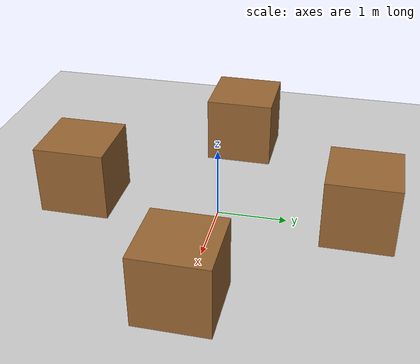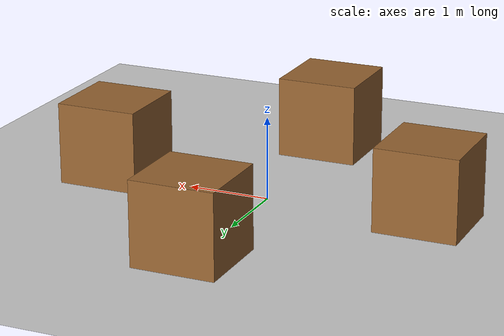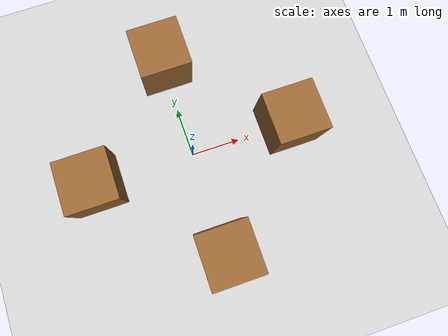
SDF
<?xml version="1.0" ?>
<sdf version="1.6">
  <world name="n10p_simple">

    <!-- 地面 -->
    <include>
      <uri>model://ground_plane</uri>
    </include>

    <!-- 光源 -->
    <include>
      <uri>model://sun</uri>
    </include>

    <scene>
      <shadows>false</shadows>
    </scene>

    <gui fullscreen='0'>
      <camera name='user_camera'>
        <pose frame=''>0 -2 5 0 0.78 0</pose>
        <view_controller>orbit</view_controller>
        <projection_type>perspective</projection_type>
      </camera>
    </gui>

    <physics type="ode">
      <real_time_update_rate>1000.0</real_time_update_rate>
      <max_step_size>0.001</max_step_size>
      <real_time_factor>1</real_time_factor>
      <ode>
        <solver>
          <type>quick</type>
          <iters>150</iters>
          <precon_iters>0</precon_iters>
          <sor>1.400000</sor>
          <use_dynamic_moi_rescaling>1</use_dynamic_moi_rescaling>
        </solver>
        <constraints>
          <cfm>0.00001</cfm>
          <erp>0.2</erp>
          <contact_max_correcting_vel>2000.000000</contact_max_correcting_vel>
          <contact_surface_layer>0.01000</contact_surface_layer>
        </constraints>
      </ode>
    </physics>

    <!-- 障碍物: 4 个盒子, 简单迷宫 -->
    <model name="obstacle_1">
      <static>true</static>
      <pose>2 0 0.5 0 0 0</pose>
      <link name="link">
        <collision name="collision">
          <geometry><box><size>1 1 1</size></box></geometry>
        </collision>
        <visual name="visual">
          <geometry><box><size>1 1 1</size></box></geometry>
          <material>
            <ambient>0.6 0.4 0.2 1</ambient>
            <diffuse>0.6 0.4 0.2 1</diffuse>
          </material>
        </visual>
      </link>
    </model>

    <model name="obstacle_2">
      <static>true</static>
      <pose>-2 0 0.5 0 0 0</pose>
      <link name="link">
        <collision name="collision">
          <geometry><box><size>1 1 1</size></box></geometry>
        </collision>
        <visual name="visual">
          <geometry><box><size>1 1 1</size></box></geometry>
          <material>
            <ambient>0.6 0.4 0.2 1</ambient>
            <diffuse>0.6 0.4 0.2 1</diffuse>
          </material>
        </visual>
      </link>
    </model>

    <model name="obstacle_3">
      <static>true</static>
      <pose>0 2 0.5 0 0 0</pose>
      <link name="link">
        <collision name="collision">
          <geometry><box><size>1 1 1</size></box></geometry>
        </collision>
        <visual name="visual">
          <geometry><box><size>1 1 1</size></box></geometry>
          <material>
            <ambient>0.6 0.4 0.2 1</ambient>
            <diffuse>0.6 0.4 0.2 1</diffuse>
          </material>
        </visual>
      </link>
    </model>

    <model name="obstacle_4">
      <static>true</static>
      <pose>0 -2 0.5 0 0 0</pose>
      <link name="link">
        <collision name="collision">
          <geometry><box><size>1 1 1</size></box></geometry>
        </collision>
        <visual name="visual">
          <geometry><box><size>1 1 1</size></box></geometry>
          <material>
            <ambient>0.6 0.4 0.2 1</ambient>
            <diffuse>0.6 0.4 0.2 1</diffuse>
          </material>
        </visual>
      </link>
    </model>

  </world>
</sdf>
